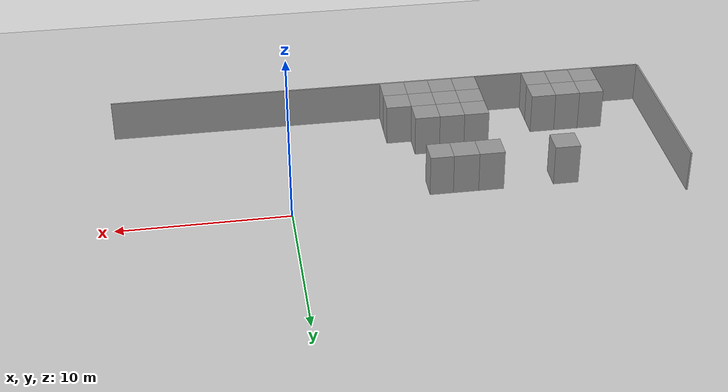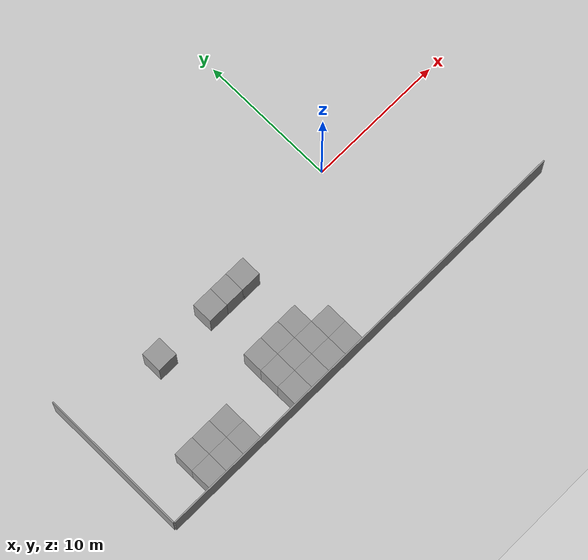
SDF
<sdf version="1.6">
 <world name="default">
  <model name="ground_plane">
   <static>1</static>
   <link name="link">
    <collision name="collision">
     <geometry><plane><normal>0 0 1</normal><size>100 100</size></plane></geometry>
     <surface><friction><ode><mu>100</mu><mu2>50</mu2></ode></friction></surface>
    </collision>
    <visual name="visual">
     <cast_shadows>0</cast_shadows>
     <geometry><plane><normal>0 0 1</normal><size>100 100</size></plane></geometry>
     <material>
      <script><uri>file://media/materials/scripts/gazebo.material</uri><name>Gazebo/Grey</name></script>
     </material>
    </visual>
   </link>
  </model>
  <model name="wall_1.5_1.5_44">
   <link name="Wall_2">
    <inertial>
     <mass>10</mass>
     <inertia><ixx>1</ixx><ixy>0</ixy><ixz>0</ixz><iyy>1</iyy><iyz>0</iyz><izz>1</izz></inertia>
    </inertial>
    <visual name="Wall_2_Visual">
     <pose>0 0 1.25 0 -0 0</pose>
     <geometry><box><size>1.5 1.5 2.5</size></box></geometry>
     <material>
      <script><uri>file://media/materials/scripts/gazebo.material</uri><name>Gazebo/Grey</name></script>
      <ambient>1 1 1 1</ambient>
      <diffuse>0.7 0.7 0.7 1</diffuse>
      <specular>0.01 0.01 0.01 1</specular>
      <emissive>0 0 0 1</emissive>
      <shader type="vertex"><normal_map>__default__</normal_map></shader>
     </material>
    </visual>
    <collision name="Wall_2_Collision">
     <pose>0 0 1.25 0 -0 0</pose>
     <geometry><box><size>1.5 1.5 2.5</size></box></geometry>
     <surface>
      <friction>
       <ode><mu>1</mu><mu2>1</mu2><fdir1>0 0 0</fdir1><slip1>0</slip1><slip2>0</slip2></ode>
       <torsional>
        <coefficient>1</coefficient>
        <patch_radius>0</patch_radius>
        <surface_radius>0</surface_radius>
        <use_patch_radius>1</use_patch_radius>
        <ode><slip>0</slip></ode>
       </torsional>
      </friction>
      <bounce><restitution_coefficient>0</restitution_coefficient><threshold>1e+06</threshold></bounce>
      <contact>
       <collide_without_contact>0</collide_without_contact>
       <collide_without_contact_bitmask>1</collide_without_contact_bitmask>
       <collide_bitmask>1</collide_bitmask>
       <ode>
        <soft_cfm>0</soft_cfm>
        <soft_erp>0.2</soft_erp>
        <kp>1e+13</kp>
        <kd>1</kd>
        <max_vel>0.01</max_vel>
        <min_depth>0</min_depth>
       </ode>
       <bullet>
        <split_impulse>1</split_impulse>
        <split_impulse_penetration_threshold>-0.01</split_impulse_penetration_threshold>
        <soft_cfm>0</soft_cfm>
        <soft_erp>0.2</soft_erp>
        <kp>1e+13</kp>
        <kd>1</kd>
       </bullet>
      </contact>
     </surface>
    </collision>
   </link>
   <static>1</static>
   <pose>-7.25 -9.25 0 0 -0 0</pose>
  </model>
  <model name="wall_1.5_1.5_45">
   <link name="Wall_2">
    <inertial>
     <mass>10</mass>
     <inertia><ixx>1</ixx><ixy>0</ixy><ixz>0</ixz><iyy>1</iyy><iyz>0</iyz><izz>1</izz></inertia>
    </inertial>
    <visual name="Wall_2_Visual">
     <pose>0 0 1.25 0 -0 0</pose>
     <geometry><box><size>1.5 1.5 2.5</size></box></geometry>
     <material>
      <script><uri>file://media/materials/scripts/gazebo.material</uri><name>Gazebo/Grey</name></script>
      <ambient>1 1 1 1</ambient>
      <diffuse>0.7 0.7 0.7 1</diffuse>
      <specular>0.01 0.01 0.01 1</specular>
      <emissive>0 0 0 1</emissive>
      <shader type="vertex"><normal_map>__default__</normal_map></shader>
     </material>
    </visual>
    <collision name="Wall_2_Collision">
     <pose>0 0 1.25 0 -0 0</pose>
     <geometry><box><size>1.5 1.5 2.5</size></box></geometry>
     <surface>
      <friction>
       <ode><mu>1</mu><mu2>1</mu2><fdir1>0 0 0</fdir1><slip1>0</slip1><slip2>0</slip2></ode>
       <torsional>
        <coefficient>1</coefficient>
        <patch_radius>0</patch_radius>
        <surface_radius>0</surface_radius>
        <use_patch_radius>1</use_patch_radius>
        <ode><slip>0</slip></ode>
       </torsional>
      </friction>
      <bounce><restitution_coefficient>0</restitution_coefficient><threshold>1e+06</threshold></bounce>
      <contact>
       <collide_without_contact>0</collide_without_contact>
       <collide_without_contact_bitmask>1</collide_without_contact_bitmask>
       <collide_bitmask>1</collide_bitmask>
       <ode>
        <soft_cfm>0</soft_cfm>
        <soft_erp>0.2</soft_erp>
        <kp>1e+13</kp>
        <kd>1</kd>
        <max_vel>0.01</max_vel>
        <min_depth>0</min_depth>
       </ode>
       <bullet>
        <split_impulse>1</split_impulse>
        <split_impulse_penetration_threshold>-0.01</split_impulse_penetration_threshold>
        <soft_cfm>0</soft_cfm>
        <soft_erp>0.2</soft_erp>
        <kp>1e+13</kp>
        <kd>1</kd>
       </bullet>
      </contact>
     </surface>
    </collision>
   </link>
   <static>1</static>
   <pose>-8.75 -9.25 0 0 -0 0</pose>
  </model>
  <model name="wall_1.5_1.5_46">
   <link name="Wall_2">
    <inertial>
     <mass>10</mass>
     <inertia><ixx>1</ixx><ixy>0</ixy><ixz>0</ixz><iyy>1</iyy><iyz>0</iyz><izz>1</izz></inertia>
    </inertial>
    <visual name="Wall_2_Visual">
     <pose>0 0 1.25 0 -0 0</pose>
     <geometry><box><size>1.5 1.5 2.5</size></box></geometry>
     <material>
      <script><uri>file://media/materials/scripts/gazebo.material</uri><name>Gazebo/Grey</name></script>
      <ambient>1 1 1 1</ambient>
      <diffuse>0.7 0.7 0.7 1</diffuse>
      <specular>0.01 0.01 0.01 1</specular>
      <emissive>0 0 0 1</emissive>
      <shader type="vertex"><normal_map>__default__</normal_map></shader>
     </material>
    </visual>
    <collision name="Wall_2_Collision">
     <pose>0 0 1.25 0 -0 0</pose>
     <geometry><box><size>1.5 1.5 2.5</size></box></geometry>
     <surface>
      <friction>
       <ode><mu>1</mu><mu2>1</mu2><fdir1>0 0 0</fdir1><slip1>0</slip1><slip2>0</slip2></ode>
       <torsional>
        <coefficient>1</coefficient>
        <patch_radius>0</patch_radius>
        <surface_radius>0</surface_radius>
        <use_patch_radius>1</use_patch_radius>
        <ode><slip>0</slip></ode>
       </torsional>
      </friction>
      <bounce><restitution_coefficient>0</restitution_coefficient><threshold>1e+06</threshold></bounce>
      <contact>
       <collide_without_contact>0</collide_without_contact>
       <collide_without_contact_bitmask>1</collide_without_contact_bitmask>
       <collide_bitmask>1</collide_bitmask>
       <ode>
        <soft_cfm>0</soft_cfm>
        <soft_erp>0.2</soft_erp>
        <kp>1e+13</kp>
        <kd>1</kd>
        <max_vel>0.01</max_vel>
        <min_depth>0</min_depth>
       </ode>
       <bullet>
        <split_impulse>1</split_impulse>
        <split_impulse_penetration_threshold>-0.01</split_impulse_penetration_threshold>
        <soft_cfm>0</soft_cfm>
        <soft_erp>0.2</soft_erp>
        <kp>1e+13</kp>
        <kd>1</kd>
       </bullet>
      </contact>
     </surface>
    </collision>
   </link>
   <static>1</static>
   <pose>-10.25 -9.25 0 0 -0 0</pose>
  </model>
  <model name="wall_1.5_1.5_47">
   <link name="Wall_2">
    <inertial>
     <mass>10</mass>
     <inertia><ixx>1</ixx><ixy>0</ixy><ixz>0</ixz><iyy>1</iyy><iyz>0</iyz><izz>1</izz></inertia>
    </inertial>
    <visual name="Wall_2_Visual">
     <pose>0 0 1.25 0 -0 0</pose>
     <geometry><box><size>1.5 1.5 2.5</size></box></geometry>
     <material>
      <script><uri>file://media/materials/scripts/gazebo.material</uri><name>Gazebo/Grey</name></script>
      <ambient>1 1 1 1</ambient>
      <diffuse>0.7 0.7 0.7 1</diffuse>
      <specular>0.01 0.01 0.01 1</specular>
      <emissive>0 0 0 1</emissive>
      <shader type="vertex"><normal_map>__default__</normal_map></shader>
     </material>
    </visual>
    <collision name="Wall_2_Collision">
     <pose>0 0 1.25 0 -0 0</pose>
     <geometry><box><size>1.5 1.5 2.5</size></box></geometry>
     <surface>
      <friction>
       <ode><mu>1</mu><mu2>1</mu2><fdir1>0 0 0</fdir1><slip1>0</slip1><slip2>0</slip2></ode>
       <torsional>
        <coefficient>1</coefficient>
        <patch_radius>0</patch_radius>
        <surface_radius>0</surface_radius>
        <use_patch_radius>1</use_patch_radius>
        <ode><slip>0</slip></ode>
       </torsional>
      </friction>
      <bounce><restitution_coefficient>0</restitution_coefficient><threshold>1e+06</threshold></bounce>
      <contact>
       <collide_without_contact>0</collide_without_contact>
       <collide_without_contact_bitmask>1</collide_without_contact_bitmask>
       <collide_bitmask>1</collide_bitmask>
       <ode>
        <soft_cfm>0</soft_cfm>
        <soft_erp>0.2</soft_erp>
        <kp>1e+13</kp>
        <kd>1</kd>
        <max_vel>0.01</max_vel>
        <min_depth>0</min_depth>
       </ode>
       <bullet>
        <split_impulse>1</split_impulse>
        <split_impulse_penetration_threshold>-0.01</split_impulse_penetration_threshold>
        <soft_cfm>0</soft_cfm>
        <soft_erp>0.2</soft_erp>
        <kp>1e+13</kp>
        <kd>1</kd>
       </bullet>
      </contact>
     </surface>
    </collision>
   </link>
   <static>1</static>
   <pose>-11.75 -9.25 0 0 -0 0</pose>
  </model>
  <model name="wall_1.5_1.5_51">
   <link name="Wall_2">
    <inertial>
     <mass>10</mass>
     <inertia><ixx>1</ixx><ixy>0</ixy><ixz>0</ixz><iyy>1</iyy><iyz>0</iyz><izz>1</izz></inertia>
    </inertial>
    <visual name="Wall_2_Visual">
     <pose>0 0 1.25 0 -0 0</pose>
     <geometry><box><size>1.5 1.5 2.5</size></box></geometry>
     <material>
      <script><uri>file://media/materials/scripts/gazebo.material</uri><name>Gazebo/Grey</name></script>
      <ambient>1 1 1 1</ambient>
      <diffuse>0.7 0.7 0.7 1</diffuse>
      <specular>0.01 0.01 0.01 1</specular>
      <emissive>0 0 0 1</emissive>
      <shader type="vertex"><normal_map>__default__</normal_map></shader>
     </material>
    </visual>
    <collision name="Wall_2_Collision">
     <pose>0 0 1.25 0 -0 0</pose>
     <geometry><box><size>1.5 1.5 2.5</size></box></geometry>
     <surface>
      <friction>
       <ode><mu>1</mu><mu2>1</mu2><fdir1>0 0 0</fdir1><slip1>0</slip1><slip2>0</slip2></ode>
       <torsional>
        <coefficient>1</coefficient>
        <patch_radius>0</patch_radius>
        <surface_radius>0</surface_radius>
        <use_patch_radius>1</use_patch_radius>
        <ode><slip>0</slip></ode>
       </torsional>
      </friction>
      <bounce><restitution_coefficient>0</restitution_coefficient><threshold>1e+06</threshold></bounce>
      <contact>
       <collide_without_contact>0</collide_without_contact>
       <collide_without_contact_bitmask>1</collide_without_contact_bitmask>
       <collide_bitmask>1</collide_bitmask>
       <ode>
        <soft_cfm>0</soft_cfm>
        <soft_erp>0.2</soft_erp>
        <kp>1e+13</kp>
        <kd>1</kd>
        <max_vel>0.01</max_vel>
        <min_depth>0</min_depth>
       </ode>
       <bullet>
        <split_impulse>1</split_impulse>
        <split_impulse_penetration_threshold>-0.01</split_impulse_penetration_threshold>
        <soft_cfm>0</soft_cfm>
        <soft_erp>0.2</soft_erp>
        <kp>1e+13</kp>
        <kd>1</kd>
       </bullet>
      </contact>
     </surface>
    </collision>
   </link>
   <static>1</static>
   <pose>-7.25 -7.75 0 0 -0 0</pose>
  </model>
  <model name="wall_1.5_1.5_52">
   <link name="Wall_2">
    <inertial>
     <mass>10</mass>
     <inertia><ixx>1</ixx><ixy>0</ixy><ixz>0</ixz><iyy>1</iyy><iyz>0</iyz><izz>1</izz></inertia>
    </inertial>
    <visual name="Wall_2_Visual">
     <pose>0 0 1.25 0 -0 0</pose>
     <geometry><box><size>1.5 1.5 2.5</size></box></geometry>
     <material>
      <script><uri>file://media/materials/scripts/gazebo.material</uri><name>Gazebo/Grey</name></script>
      <ambient>1 1 1 1</ambient>
      <diffuse>0.7 0.7 0.7 1</diffuse>
      <specular>0.01 0.01 0.01 1</specular>
      <emissive>0 0 0 1</emissive>
      <shader type="vertex"><normal_map>__default__</normal_map></shader>
     </material>
    </visual>
    <collision name="Wall_2_Collision">
     <pose>0 0 1.25 0 -0 0</pose>
     <geometry><box><size>1.5 1.5 2.5</size></box></geometry>
     <surface>
      <friction>
       <ode><mu>1</mu><mu2>1</mu2><fdir1>0 0 0</fdir1><slip1>0</slip1><slip2>0</slip2></ode>
       <torsional>
        <coefficient>1</coefficient>
        <patch_radius>0</patch_radius>
        <surface_radius>0</surface_radius>
        <use_patch_radius>1</use_patch_radius>
        <ode><slip>0</slip></ode>
       </torsional>
      </friction>
      <bounce><restitution_coefficient>0</restitution_coefficient><threshold>1e+06</threshold></bounce>
      <contact>
       <collide_without_contact>0</collide_without_contact>
       <collide_without_contact_bitmask>1</collide_without_contact_bitmask>
       <collide_bitmask>1</collide_bitmask>
       <ode>
        <soft_cfm>0</soft_cfm>
        <soft_erp>0.2</soft_erp>
        <kp>1e+13</kp>
        <kd>1</kd>
        <max_vel>0.01</max_vel>
        <min_depth>0</min_depth>
       </ode>
       <bullet>
        <split_impulse>1</split_impulse>
        <split_impulse_penetration_threshold>-0.01</split_impulse_penetration_threshold>
        <soft_cfm>0</soft_cfm>
        <soft_erp>0.2</soft_erp>
        <kp>1e+13</kp>
        <kd>1</kd>
       </bullet>
      </contact>
     </surface>
    </collision>
   </link>
   <static>1</static>
   <pose>-8.75 -7.75 0 0 -0 0</pose>
  </model>
  <model name="wall_1.5_1.5_53">
   <link name="Wall_2">
    <inertial>
     <mass>10</mass>
     <inertia><ixx>1</ixx><ixy>0</ixy><ixz>0</ixz><iyy>1</iyy><iyz>0</iyz><izz>1</izz></inertia>
    </inertial>
    <visual name="Wall_2_Visual">
     <pose>0 0 1.25 0 -0 0</pose>
     <geometry><box><size>1.5 1.5 2.5</size></box></geometry>
     <material>
      <script><uri>file://media/materials/scripts/gazebo.material</uri><name>Gazebo/Grey</name></script>
      <ambient>1 1 1 1</ambient>
      <diffuse>0.7 0.7 0.7 1</diffuse>
      <specular>0.01 0.01 0.01 1</specular>
      <emissive>0 0 0 1</emissive>
      <shader type="vertex"><normal_map>__default__</normal_map></shader>
     </material>
    </visual>
    <collision name="Wall_2_Collision">
     <pose>0 0 1.25 0 -0 0</pose>
     <geometry><box><size>1.5 1.5 2.5</size></box></geometry>
     <surface>
      <friction>
       <ode><mu>1</mu><mu2>1</mu2><fdir1>0 0 0</fdir1><slip1>0</slip1><slip2>0</slip2></ode>
       <torsional>
        <coefficient>1</coefficient>
        <patch_radius>0</patch_radius>
        <surface_radius>0</surface_radius>
        <use_patch_radius>1</use_patch_radius>
        <ode><slip>0</slip></ode>
       </torsional>
      </friction>
      <bounce><restitution_coefficient>0</restitution_coefficient><threshold>1e+06</threshold></bounce>
      <contact>
       <collide_without_contact>0</collide_without_contact>
       <collide_without_contact_bitmask>1</collide_without_contact_bitmask>
       <collide_bitmask>1</collide_bitmask>
       <ode>
        <soft_cfm>0</soft_cfm>
        <soft_erp>0.2</soft_erp>
        <kp>1e+13</kp>
        <kd>1</kd>
        <max_vel>0.01</max_vel>
        <min_depth>0</min_depth>
       </ode>
       <bullet>
        <split_impulse>1</split_impulse>
        <split_impulse_penetration_threshold>-0.01</split_impulse_penetration_threshold>
        <soft_cfm>0</soft_cfm>
        <soft_erp>0.2</soft_erp>
        <kp>1e+13</kp>
        <kd>1</kd>
       </bullet>
      </contact>
     </surface>
    </collision>
   </link>
   <static>1</static>
   <pose>-10.25 -7.75 0 0 -0 0</pose>
  </model>
  <model name="wall_1.5_1.5_54">
   <link name="Wall_2">
    <inertial>
     <mass>10</mass>
     <inertia><ixx>1</ixx><ixy>0</ixy><ixz>0</ixz><iyy>1</iyy><iyz>0</iyz><izz>1</izz></inertia>
    </inertial>
    <visual name="Wall_2_Visual">
     <pose>0 0 1.25 0 -0 0</pose>
     <geometry><box><size>1.5 1.5 2.5</size></box></geometry>
     <material>
      <script><uri>file://media/materials/scripts/gazebo.material</uri><name>Gazebo/Grey</name></script>
      <ambient>1 1 1 1</ambient>
      <diffuse>0.7 0.7 0.7 1</diffuse>
      <specular>0.01 0.01 0.01 1</specular>
      <emissive>0 0 0 1</emissive>
      <shader type="vertex"><normal_map>__default__</normal_map></shader>
     </material>
    </visual>
    <collision name="Wall_2_Collision">
     <pose>0 0 1.25 0 -0 0</pose>
     <geometry><box><size>1.5 1.5 2.5</size></box></geometry>
     <surface>
      <friction>
       <ode><mu>1</mu><mu2>1</mu2><fdir1>0 0 0</fdir1><slip1>0</slip1><slip2>0</slip2></ode>
       <torsional>
        <coefficient>1</coefficient>
        <patch_radius>0</patch_radius>
        <surface_radius>0</surface_radius>
        <use_patch_radius>1</use_patch_radius>
        <ode><slip>0</slip></ode>
       </torsional>
      </friction>
      <bounce><restitution_coefficient>0</restitution_coefficient><threshold>1e+06</threshold></bounce>
      <contact>
       <collide_without_contact>0</collide_without_contact>
       <collide_without_contact_bitmask>1</collide_without_contact_bitmask>
       <collide_bitmask>1</collide_bitmask>
       <ode>
        <soft_cfm>0</soft_cfm>
        <soft_erp>0.2</soft_erp>
        <kp>1e+13</kp>
        <kd>1</kd>
        <max_vel>0.01</max_vel>
        <min_depth>0</min_depth>
       </ode>
       <bullet>
        <split_impulse>1</split_impulse>
        <split_impulse_penetration_threshold>-0.01</split_impulse_penetration_threshold>
        <soft_cfm>0</soft_cfm>
        <soft_erp>0.2</soft_erp>
        <kp>1e+13</kp>
        <kd>1</kd>
       </bullet>
      </contact>
     </surface>
    </collision>
   </link>
   <static>1</static>
   <pose>-11.75 -7.75 0 0 -0 0</pose>
  </model>
  <model name="wall_1.5_1.5_61">
   <link name="Wall_2">
    <inertial>
     <mass>10</mass>
     <inertia><ixx>1</ixx><ixy>0</ixy><ixz>0</ixz><iyy>1</iyy><iyz>0</iyz><izz>1</izz></inertia>
    </inertial>
    <visual name="Wall_2_Visual">
     <pose>0 0 1.25 0 -0 0</pose>
     <geometry><box><size>1.5 1.5 2.5</size></box></geometry>
     <material>
      <script><uri>file://media/materials/scripts/gazebo.material</uri><name>Gazebo/Grey</name></script>
      <ambient>1 1 1 1</ambient>
      <diffuse>0.7 0.7 0.7 1</diffuse>
      <specular>0.01 0.01 0.01 1</specular>
      <emissive>0 0 0 1</emissive>
      <shader type="vertex"><normal_map>__default__</normal_map></shader>
     </material>
    </visual>
    <collision name="Wall_2_Collision">
     <pose>0 0 1.25 0 -0 0</pose>
     <geometry><box><size>1.5 1.5 2.5</size></box></geometry>
     <surface>
      <friction>
       <ode><mu>1</mu><mu2>1</mu2><fdir1>0 0 0</fdir1><slip1>0</slip1><slip2>0</slip2></ode>
       <torsional>
        <coefficient>1</coefficient>
        <patch_radius>0</patch_radius>
        <surface_radius>0</surface_radius>
        <use_patch_radius>1</use_patch_radius>
        <ode><slip>0</slip></ode>
       </torsional>
      </friction>
      <bounce><restitution_coefficient>0</restitution_coefficient><threshold>1e+06</threshold></bounce>
      <contact>
       <collide_without_contact>0</collide_without_contact>
       <collide_without_contact_bitmask>1</collide_without_contact_bitmask>
       <collide_bitmask>1</collide_bitmask>
       <ode>
        <soft_cfm>0</soft_cfm>
        <soft_erp>0.2</soft_erp>
        <kp>1e+13</kp>
        <kd>1</kd>
        <max_vel>0.01</max_vel>
        <min_depth>0</min_depth>
       </ode>
       <bullet>
        <split_impulse>1</split_impulse>
        <split_impulse_penetration_threshold>-0.01</split_impulse_penetration_threshold>
        <soft_cfm>0</soft_cfm>
        <soft_erp>0.2</soft_erp>
        <kp>1e+13</kp>
        <kd>1</kd>
       </bullet>
      </contact>
     </surface>
    </collision>
   </link>
   <static>1</static>
   <pose>-11.75 -6.25 0 0 -0 0</pose>
  </model>
  <model name="wall_1.5_1.5_62">
   <link name="Wall_2">
    <inertial>
     <mass>10</mass>
     <inertia><ixx>1</ixx><ixy>0</ixy><ixz>0</ixz><iyy>1</iyy><iyz>0</iyz><izz>1</izz></inertia>
    </inertial>
    <visual name="Wall_2_Visual">
     <pose>0 0 1.25 0 -0 0</pose>
     <geometry><box><size>1.5 1.5 2.5</size></box></geometry>
     <material>
      <script><uri>file://media/materials/scripts/gazebo.material</uri><name>Gazebo/Grey</name></script>
      <ambient>1 1 1 1</ambient>
      <diffuse>0.7 0.7 0.7 1</diffuse>
      <specular>0.01 0.01 0.01 1</specular>
      <emissive>0 0 0 1</emissive>
      <shader type="vertex"><normal_map>__default__</normal_map></shader>
     </material>
    </visual>
    <collision name="Wall_2_Collision">
     <pose>0 0 1.25 0 -0 0</pose>
     <geometry><box><size>1.5 1.5 2.5</size></box></geometry>
     <surface>
      <friction>
       <ode><mu>1</mu><mu2>1</mu2><fdir1>0 0 0</fdir1><slip1>0</slip1><slip2>0</slip2></ode>
       <torsional>
        <coefficient>1</coefficient>
        <patch_radius>0</patch_radius>
        <surface_radius>0</surface_radius>
        <use_patch_radius>1</use_patch_radius>
        <ode><slip>0</slip></ode>
       </torsional>
      </friction>
      <bounce><restitution_coefficient>0</restitution_coefficient><threshold>1e+06</threshold></bounce>
      <contact>
       <collide_without_contact>0</collide_without_contact>
       <collide_without_contact_bitmask>1</collide_without_contact_bitmask>
       <collide_bitmask>1</collide_bitmask>
       <ode>
        <soft_cfm>0</soft_cfm>
        <soft_erp>0.2</soft_erp>
        <kp>1e+13</kp>
        <kd>1</kd>
        <max_vel>0.01</max_vel>
        <min_depth>0</min_depth>
       </ode>
       <bullet>
        <split_impulse>1</split_impulse>
        <split_impulse_penetration_threshold>-0.01</split_impulse_penetration_threshold>
        <soft_cfm>0</soft_cfm>
        <soft_erp>0.2</soft_erp>
        <kp>1e+13</kp>
        <kd>1</kd>
       </bullet>
      </contact>
     </surface>
    </collision>
   </link>
   <static>1</static>
   <pose>-10.25 -6.25 0 0 -0 0</pose>
  </model>
  <model name="wall_1.5_1.5_63">
   <link name="Wall_2">
    <inertial>
     <mass>10</mass>
     <inertia><ixx>1</ixx><ixy>0</ixy><ixz>0</ixz><iyy>1</iyy><iyz>0</iyz><izz>1</izz></inertia>
    </inertial>
    <visual name="Wall_2_Visual">
     <pose>0 0 1.25 0 -0 0</pose>
     <geometry><box><size>1.5 1.5 2.5</size></box></geometry>
     <material>
      <script><uri>file://media/materials/scripts/gazebo.material</uri><name>Gazebo/Grey</name></script>
      <ambient>1 1 1 1</ambient>
      <diffuse>0.7 0.7 0.7 1</diffuse>
      <specular>0.01 0.01 0.01 1</specular>
      <emissive>0 0 0 1</emissive>
      <shader type="vertex"><normal_map>__default__</normal_map></shader>
     </material>
    </visual>
    <collision name="Wall_2_Collision">
     <pose>0 0 1.25 0 -0 0</pose>
     <geometry><box><size>1.5 1.5 2.5</size></box></geometry>
     <surface>
      <friction>
       <ode><mu>1</mu><mu2>1</mu2><fdir1>0 0 0</fdir1><slip1>0</slip1><slip2>0</slip2></ode>
       <torsional>
        <coefficient>1</coefficient>
        <patch_radius>0</patch_radius>
        <surface_radius>0</surface_radius>
        <use_patch_radius>1</use_patch_radius>
        <ode><slip>0</slip></ode>
       </torsional>
      </friction>
      <bounce><restitution_coefficient>0</restitution_coefficient><threshold>1e+06</threshold></bounce>
      <contact>
       <collide_without_contact>0</collide_without_contact>
       <collide_without_contact_bitmask>1</collide_without_contact_bitmask>
       <collide_bitmask>1</collide_bitmask>
       <ode>
        <soft_cfm>0</soft_cfm>
        <soft_erp>0.2</soft_erp>
        <kp>1e+13</kp>
        <kd>1</kd>
        <max_vel>0.01</max_vel>
        <min_depth>0</min_depth>
       </ode>
       <bullet>
        <split_impulse>1</split_impulse>
        <split_impulse_penetration_threshold>-0.01</split_impulse_penetration_threshold>
        <soft_cfm>0</soft_cfm>
        <soft_erp>0.2</soft_erp>
        <kp>1e+13</kp>
        <kd>1</kd>
       </bullet>
      </contact>
     </surface>
    </collision>
   </link>
   <static>1</static>
   <pose>-8.75 -6.25 0 0 -0 0</pose>
  </model>
  <model name="wall_1.5_1.5_95">
   <link name="Wall_2">
    <inertial>
     <mass>10</mass>
     <inertia><ixx>1</ixx><ixy>0</ixy><ixz>0</ixz><iyy>1</iyy><iyz>0</iyz><izz>1</izz></inertia>
    </inertial>
    <visual name="Wall_2_Visual">
     <pose>0 0 1.25 0 -0 0</pose>
     <geometry><box><size>1.5 1.5 2.5</size></box></geometry>
     <material>
      <script><uri>file://media/materials/scripts/gazebo.material</uri><name>Gazebo/Grey</name></script>
      <ambient>1 1 1 1</ambient>
      <diffuse>0.7 0.7 0.7 1</diffuse>
      <specular>0.01 0.01 0.01 1</specular>
      <emissive>0 0 0 1</emissive>
      <shader type="vertex"><normal_map>__default__</normal_map></shader>
     </material>
    </visual>
    <collision name="Wall_2_Collision">
     <pose>0 0 1.25 0 -0 0</pose>
     <geometry><box><size>1.5 1.5 2.5</size></box></geometry>
     <surface>
      <friction>
       <ode><mu>1</mu><mu2>1</mu2><fdir1>0 0 0</fdir1><slip1>0</slip1><slip2>0</slip2></ode>
       <torsional>
        <coefficient>1</coefficient>
        <patch_radius>0</patch_radius>
        <surface_radius>0</surface_radius>
        <use_patch_radius>1</use_patch_radius>
        <ode><slip>0</slip></ode>
       </torsional>
      </friction>
      <bounce><restitution_coefficient>0</restitution_coefficient><threshold>1e+06</threshold></bounce>
      <contact>
       <collide_without_contact>0</collide_without_contact>
       <collide_without_contact_bitmask>1</collide_without_contact_bitmask>
       <collide_bitmask>1</collide_bitmask>
       <ode>
        <soft_cfm>0</soft_cfm>
        <soft_erp>0.2</soft_erp>
        <kp>1e+13</kp>
        <kd>1</kd>
        <max_vel>0.01</max_vel>
        <min_depth>0</min_depth>
       </ode>
       <bullet>
        <split_impulse>1</split_impulse>
        <split_impulse_penetration_threshold>-0.01</split_impulse_penetration_threshold>
        <soft_cfm>0</soft_cfm>
        <soft_erp>0.2</soft_erp>
        <kp>1e+13</kp>
        <kd>1</kd>
       </bullet>
      </contact>
     </surface>
    </collision>
   </link>
   <static>1</static>
   <pose>-8.875 -1.75 0 0 -0 0</pose>
  </model>
  <model name="wall_1.5_1.5_97">
   <link name="Wall_2">
    <inertial>
     <mass>10</mass>
     <inertia><ixx>1</ixx><ixy>0</ixy><ixz>0</ixz><iyy>1</iyy><iyz>0</iyz><izz>1</izz></inertia>
    </inertial>
    <visual name="Wall_2_Visual">
     <pose>0 0 1.25 0 -0 0</pose>
     <geometry><box><size>1.5 1.5 2.5</size></box></geometry>
     <material>
      <script><uri>file://media/materials/scripts/gazebo.material</uri><name>Gazebo/Grey</name></script>
      <ambient>1 1 1 1</ambient>
      <diffuse>0.7 0.7 0.7 1</diffuse>
      <specular>0.01 0.01 0.01 1</specular>
      <emissive>0 0 0 1</emissive>
      <shader type="vertex"><normal_map>__default__</normal_map></shader>
     </material>
    </visual>
    <collision name="Wall_2_Collision">
     <pose>0 0 1.25 0 -0 0</pose>
     <geometry><box><size>1.5 1.5 2.5</size></box></geometry>
     <surface>
      <friction>
       <ode><mu>1</mu><mu2>1</mu2><fdir1>0 0 0</fdir1><slip1>0</slip1><slip2>0</slip2></ode>
       <torsional>
        <coefficient>1</coefficient>
        <patch_radius>0</patch_radius>
        <surface_radius>0</surface_radius>
        <use_patch_radius>1</use_patch_radius>
        <ode><slip>0</slip></ode>
       </torsional>
      </friction>
      <bounce><restitution_coefficient>0</restitution_coefficient><threshold>1e+06</threshold></bounce>
      <contact>
       <collide_without_contact>0</collide_without_contact>
       <collide_without_contact_bitmask>1</collide_without_contact_bitmask>
       <collide_bitmask>1</collide_bitmask>
       <ode>
        <soft_cfm>0</soft_cfm>
        <soft_erp>0.2</soft_erp>
        <kp>1e+13</kp>
        <kd>1</kd>
        <max_vel>0.01</max_vel>
        <min_depth>0</min_depth>
       </ode>
       <bullet>
        <split_impulse>1</split_impulse>
        <split_impulse_penetration_threshold>-0.01</split_impulse_penetration_threshold>
        <soft_cfm>0</soft_cfm>
        <soft_erp>0.2</soft_erp>
        <kp>1e+13</kp>
        <kd>1</kd>
       </bullet>
      </contact>
     </surface>
    </collision>
   </link>
   <static>1</static>
   <pose>-10.25 -1.75 0 0 -0 0</pose>
  </model>
  <model name="wall_1.5_1.5_98">
   <link name="Wall_2">
    <inertial>
     <mass>10</mass>
     <inertia><ixx>1</ixx><ixy>0</ixy><ixz>0</ixz><iyy>1</iyy><iyz>0</iyz><izz>1</izz></inertia>
    </inertial>
    <visual name="Wall_2_Visual">
     <pose>0 0 1.25 0 -0 0</pose>
     <geometry><box><size>1.5 1.5 2.5</size></box></geometry>
     <material>
      <script><uri>file://media/materials/scripts/gazebo.material</uri><name>Gazebo/Grey</name></script>
      <ambient>1 1 1 1</ambient>
      <diffuse>0.7 0.7 0.7 1</diffuse>
      <specular>0.01 0.01 0.01 1</specular>
      <emissive>0 0 0 1</emissive>
      <shader type="vertex"><normal_map>__default__</normal_map></shader>
     </material>
    </visual>
    <collision name="Wall_2_Collision">
     <pose>0 0 1.25 0 -0 0</pose>
     <geometry><box><size>1.5 1.5 2.5</size></box></geometry>
     <surface>
      <friction>
       <ode><mu>1</mu><mu2>1</mu2><fdir1>0 0 0</fdir1><slip1>0</slip1><slip2>0</slip2></ode>
       <torsional>
        <coefficient>1</coefficient>
        <patch_radius>0</patch_radius>
        <surface_radius>0</surface_radius>
        <use_patch_radius>1</use_patch_radius>
        <ode><slip>0</slip></ode>
       </torsional>
      </friction>
      <bounce><restitution_coefficient>0</restitution_coefficient><threshold>1e+06</threshold></bounce>
      <contact>
       <collide_without_contact>0</collide_without_contact>
       <collide_without_contact_bitmask>1</collide_without_contact_bitmask>
       <collide_bitmask>1</collide_bitmask>
       <ode>
        <soft_cfm>0</soft_cfm>
        <soft_erp>0.2</soft_erp>
        <kp>1e+13</kp>
        <kd>1</kd>
        <max_vel>0.01</max_vel>
        <min_depth>0</min_depth>
       </ode>
       <bullet>
        <split_impulse>1</split_impulse>
        <split_impulse_penetration_threshold>-0.01</split_impulse_penetration_threshold>
        <soft_cfm>0</soft_cfm>
        <soft_erp>0.2</soft_erp>
        <kp>1e+13</kp>
        <kd>1</kd>
       </bullet>
      </contact>
     </surface>
    </collision>
   </link>
   <static>1</static>
   <pose>-11.75 -1.75 0 0 -0 0</pose>
  </model>
  <model name="wall_1.5_1.5_113">
   <link name="Wall_2">
    <inertial>
     <mass>10</mass>
     <inertia><ixx>1</ixx><ixy>0</ixy><ixz>0</ixz><iyy>1</iyy><iyz>0</iyz><izz>1</izz></inertia>
    </inertial>
    <visual name="Wall_2_Visual">
     <pose>0 0 1.25 0 -0 0</pose>
     <geometry><box><size>1.5 1.5 2.5</size></box></geometry>
     <material>
      <script><uri>file://media/materials/scripts/gazebo.material</uri><name>Gazebo/Grey</name></script>
      <ambient>1 1 1 1</ambient>
      <diffuse>0.7 0.7 0.7 1</diffuse>
      <specular>0.01 0.01 0.01 1</specular>
      <emissive>0 0 0 1</emissive>
      <shader type="vertex"><normal_map>__default__</normal_map></shader>
     </material>
    </visual>
    <collision name="Wall_2_Collision">
     <pose>0 0 1.25 0 -0 0</pose>
     <geometry><box><size>1.5 1.5 2.5</size></box></geometry>
     <surface>
      <friction>
       <ode><mu>1</mu><mu2>1</mu2><fdir1>0 0 0</fdir1><slip1>0</slip1><slip2>0</slip2></ode>
       <torsional>
        <coefficient>1</coefficient>
        <patch_radius>0</patch_radius>
        <surface_radius>0</surface_radius>
        <use_patch_radius>1</use_patch_radius>
        <ode><slip>0</slip></ode>
       </torsional>
      </friction>
      <bounce><restitution_coefficient>0</restitution_coefficient><threshold>1e+06</threshold></bounce>
      <contact>
       <collide_without_contact>0</collide_without_contact>
       <collide_without_contact_bitmask>1</collide_without_contact_bitmask>
       <collide_bitmask>1</collide_bitmask>
       <ode>
        <soft_cfm>0</soft_cfm>
        <soft_erp>0.2</soft_erp>
        <kp>1e+13</kp>
        <kd>1</kd>
        <max_vel>0.01</max_vel>
        <min_depth>0</min_depth>
       </ode>
       <bullet>
        <split_impulse>1</split_impulse>
        <split_impulse_penetration_threshold>-0.01</split_impulse_penetration_threshold>
        <soft_cfm>0</soft_cfm>
        <soft_erp>0.2</soft_erp>
        <kp>1e+13</kp>
        <kd>1</kd>
       </bullet>
      </contact>
     </surface>
    </collision>
   </link>
   <static>1</static>
   <pose>-16.25 -9.25 0 0 -0 0</pose>
  </model>
  <model name="wall_1.5_1.5_114">
   <link name="Wall_2">
    <inertial>
     <mass>10</mass>
     <inertia><ixx>1</ixx><ixy>0</ixy><ixz>0</ixz><iyy>1</iyy><iyz>0</iyz><izz>1</izz></inertia>
    </inertial>
    <visual name="Wall_2_Visual">
     <pose>0 0 1.25 0 -0 0</pose>
     <geometry><box><size>1.5 1.5 2.5</size></box></geometry>
     <material>
      <script><uri>file://media/materials/scripts/gazebo.material</uri><name>Gazebo/Grey</name></script>
      <ambient>1 1 1 1</ambient>
      <diffuse>0.7 0.7 0.7 1</diffuse>
      <specular>0.01 0.01 0.01 1</specular>
      <emissive>0 0 0 1</emissive>
      <shader type="vertex"><normal_map>__default__</normal_map></shader>
     </material>
    </visual>
    <collision name="Wall_2_Collision">
     <pose>0 0 1.25 0 -0 0</pose>
     <geometry><box><size>1.5 1.5 2.5</size></box></geometry>
     <surface>
      <friction>
       <ode><mu>1</mu><mu2>1</mu2><fdir1>0 0 0</fdir1><slip1>0</slip1><slip2>0</slip2></ode>
       <torsional>
        <coefficient>1</coefficient>
        <patch_radius>0</patch_radius>
        <surface_radius>0</surface_radius>
        <use_patch_radius>1</use_patch_radius>
        <ode><slip>0</slip></ode>
       </torsional>
      </friction>
      <bounce><restitution_coefficient>0</restitution_coefficient><threshold>1e+06</threshold></bounce>
      <contact>
       <collide_without_contact>0</collide_without_contact>
       <collide_without_contact_bitmask>1</collide_without_contact_bitmask>
       <collide_bitmask>1</collide_bitmask>
       <ode>
        <soft_cfm>0</soft_cfm>
        <soft_erp>0.2</soft_erp>
        <kp>1e+13</kp>
        <kd>1</kd>
        <max_vel>0.01</max_vel>
        <min_depth>0</min_depth>
       </ode>
       <bullet>
        <split_impulse>1</split_impulse>
        <split_impulse_penetration_threshold>-0.01</split_impulse_penetration_threshold>
        <soft_cfm>0</soft_cfm>
        <soft_erp>0.2</soft_erp>
        <kp>1e+13</kp>
        <kd>1</kd>
       </bullet>
      </contact>
     </surface>
    </collision>
   </link>
   <static>1</static>
   <pose>-16.25 -7.75 0 0 -0 0</pose>
  </model>
  <model name="wall_1.5_1.5_115">
   <link name="Wall_2">
    <inertial>
     <mass>10</mass>
     <inertia><ixx>1</ixx><ixy>0</ixy><ixz>0</ixz><iyy>1</iyy><iyz>0</iyz><izz>1</izz></inertia>
    </inertial>
    <visual name="Wall_2_Visual">
     <pose>0 0 1.25 0 -0 0</pose>
     <geometry><box><size>1.5 1.5 2.5</size></box></geometry>
     <material>
      <script><uri>file://media/materials/scripts/gazebo.material</uri><name>Gazebo/Grey</name></script>
      <ambient>1 1 1 1</ambient>
      <diffuse>0.7 0.7 0.7 1</diffuse>
      <specular>0.01 0.01 0.01 1</specular>
      <emissive>0 0 0 1</emissive>
      <shader type="vertex"><normal_map>__default__</normal_map></shader>
     </material>
    </visual>
    <collision name="Wall_2_Collision">
     <pose>0 0 1.25 0 -0 0</pose>
     <geometry><box><size>1.5 1.5 2.5</size></box></geometry>
     <surface>
      <friction>
       <ode><mu>1</mu><mu2>1</mu2><fdir1>0 0 0</fdir1><slip1>0</slip1><slip2>0</slip2></ode>
       <torsional>
        <coefficient>1</coefficient>
        <patch_radius>0</patch_radius>
        <surface_radius>0</surface_radius>
        <use_patch_radius>1</use_patch_radius>
        <ode><slip>0</slip></ode>
       </torsional>
      </friction>
      <bounce><restitution_coefficient>0</restitution_coefficient><threshold>1e+06</threshold></bounce>
      <contact>
       <collide_without_contact>0</collide_without_contact>
       <collide_without_contact_bitmask>1</collide_without_contact_bitmask>
       <collide_bitmask>1</collide_bitmask>
       <ode>
        <soft_cfm>0</soft_cfm>
        <soft_erp>0.2</soft_erp>
        <kp>1e+13</kp>
        <kd>1</kd>
        <max_vel>0.01</max_vel>
        <min_depth>0</min_depth>
       </ode>
       <bullet>
        <split_impulse>1</split_impulse>
        <split_impulse_penetration_threshold>-0.01</split_impulse_penetration_threshold>
        <soft_cfm>0</soft_cfm>
        <soft_erp>0.2</soft_erp>
        <kp>1e+13</kp>
        <kd>1</kd>
       </bullet>
      </contact>
     </surface>
    </collision>
   </link>
   <static>1</static>
   <pose>-17.75 -9.25 0 0 -0 0</pose>
  </model>
  <model name="wall_1.5_1.5_116">
   <link name="Wall_2">
    <inertial>
     <mass>10</mass>
     <inertia><ixx>1</ixx><ixy>0</ixy><ixz>0</ixz><iyy>1</iyy><iyz>0</iyz><izz>1</izz></inertia>
    </inertial>
    <visual name="Wall_2_Visual">
     <pose>0 0 1.25 0 -0 0</pose>
     <geometry><box><size>1.5 1.5 2.5</size></box></geometry>
     <material>
      <script><uri>file://media/materials/scripts/gazebo.material</uri><name>Gazebo/Grey</name></script>
      <ambient>1 1 1 1</ambient>
      <diffuse>0.7 0.7 0.7 1</diffuse>
      <specular>0.01 0.01 0.01 1</specular>
      <emissive>0 0 0 1</emissive>
      <shader type="vertex"><normal_map>__default__</normal_map></shader>
     </material>
    </visual>
    <collision name="Wall_2_Collision">
     <pose>0 0 1.25 0 -0 0</pose>
     <geometry><box><size>1.5 1.5 2.5</size></box></geometry>
     <surface>
      <friction>
       <ode><mu>1</mu><mu2>1</mu2><fdir1>0 0 0</fdir1><slip1>0</slip1><slip2>0</slip2></ode>
       <torsional>
        <coefficient>1</coefficient>
        <patch_radius>0</patch_radius>
        <surface_radius>0</surface_radius>
        <use_patch_radius>1</use_patch_radius>
        <ode><slip>0</slip></ode>
       </torsional>
      </friction>
      <bounce><restitution_coefficient>0</restitution_coefficient><threshold>1e+06</threshold></bounce>
      <contact>
       <collide_without_contact>0</collide_without_contact>
       <collide_without_contact_bitmask>1</collide_without_contact_bitmask>
       <collide_bitmask>1</collide_bitmask>
       <ode>
        <soft_cfm>0</soft_cfm>
        <soft_erp>0.2</soft_erp>
        <kp>1e+13</kp>
        <kd>1</kd>
        <max_vel>0.01</max_vel>
        <min_depth>0</min_depth>
       </ode>
       <bullet>
        <split_impulse>1</split_impulse>
        <split_impulse_penetration_threshold>-0.01</split_impulse_penetration_threshold>
        <soft_cfm>0</soft_cfm>
        <soft_erp>0.2</soft_erp>
        <kp>1e+13</kp>
        <kd>1</kd>
       </bullet>
      </contact>
     </surface>
    </collision>
   </link>
   <static>1</static>
   <pose>-17.75 -7.75 0 0 -0 0</pose>
  </model>
  <model name="wall_1.5_1.5_117">
   <link name="Wall_2">
    <inertial>
     <mass>10</mass>
     <inertia><ixx>1</ixx><ixy>0</ixy><ixz>0</ixz><iyy>1</iyy><iyz>0</iyz><izz>1</izz></inertia>
    </inertial>
    <visual name="Wall_2_Visual">
     <pose>0 0 1.25 0 -0 0</pose>
     <geometry><box><size>1.5 1.5 2.5</size></box></geometry>
     <material>
      <script><uri>file://media/materials/scripts/gazebo.material</uri><name>Gazebo/Grey</name></script>
      <ambient>1 1 1 1</ambient>
      <diffuse>0.7 0.7 0.7 1</diffuse>
      <specular>0.01 0.01 0.01 1</specular>
      <emissive>0 0 0 1</emissive>
      <shader type="vertex"><normal_map>__default__</normal_map></shader>
     </material>
    </visual>
    <collision name="Wall_2_Collision">
     <pose>0 0 1.25 0 -0 0</pose>
     <geometry><box><size>1.5 1.5 2.5</size></box></geometry>
     <surface>
      <friction>
       <ode><mu>1</mu><mu2>1</mu2><fdir1>0 0 0</fdir1><slip1>0</slip1><slip2>0</slip2></ode>
       <torsional>
        <coefficient>1</coefficient>
        <patch_radius>0</patch_radius>
        <surface_radius>0</surface_radius>
        <use_patch_radius>1</use_patch_radius>
        <ode><slip>0</slip></ode>
       </torsional>
      </friction>
      <bounce><restitution_coefficient>0</restitution_coefficient><threshold>1e+06</threshold></bounce>
      <contact>
       <collide_without_contact>0</collide_without_contact>
       <collide_without_contact_bitmask>1</collide_without_contact_bitmask>
       <collide_bitmask>1</collide_bitmask>
       <ode>
        <soft_cfm>0</soft_cfm>
        <soft_erp>0.2</soft_erp>
        <kp>1e+13</kp>
        <kd>1</kd>
        <max_vel>0.01</max_vel>
        <min_depth>0</min_depth>
       </ode>
       <bullet>
        <split_impulse>1</split_impulse>
        <split_impulse_penetration_threshold>-0.01</split_impulse_penetration_threshold>
        <soft_cfm>0</soft_cfm>
        <soft_erp>0.2</soft_erp>
        <kp>1e+13</kp>
        <kd>1</kd>
       </bullet>
      </contact>
     </surface>
    </collision>
   </link>
   <static>1</static>
   <pose>-19.25 -9.25 0 0 -0 0</pose>
  </model>
  <model name="wall_1.5_1.5_118">
   <link name="Wall_2">
    <inertial>
     <mass>10</mass>
     <inertia><ixx>1</ixx><ixy>0</ixy><ixz>0</ixz><iyy>1</iyy><iyz>0</iyz><izz>1</izz></inertia>
    </inertial>
    <visual name="Wall_2_Visual">
     <pose>0 0 1.25 0 -0 0</pose>
     <geometry><box><size>1.5 1.5 2.5</size></box></geometry>
     <material>
      <script><uri>file://media/materials/scripts/gazebo.material</uri><name>Gazebo/Grey</name></script>
      <ambient>1 1 1 1</ambient>
      <diffuse>0.7 0.7 0.7 1</diffuse>
      <specular>0.01 0.01 0.01 1</specular>
      <emissive>0 0 0 1</emissive>
      <shader type="vertex"><normal_map>__default__</normal_map></shader>
     </material>
    </visual>
    <collision name="Wall_2_Collision">
     <pose>0 0 1.25 0 -0 0</pose>
     <geometry><box><size>1.5 1.5 2.5</size></box></geometry>
     <surface>
      <friction>
       <ode><mu>1</mu><mu2>1</mu2><fdir1>0 0 0</fdir1><slip1>0</slip1><slip2>0</slip2></ode>
       <torsional>
        <coefficient>1</coefficient>
        <patch_radius>0</patch_radius>
        <surface_radius>0</surface_radius>
        <use_patch_radius>1</use_patch_radius>
        <ode><slip>0</slip></ode>
       </torsional>
      </friction>
      <bounce><restitution_coefficient>0</restitution_coefficient><threshold>1e+06</threshold></bounce>
      <contact>
       <collide_without_contact>0</collide_without_contact>
       <collide_without_contact_bitmask>1</collide_without_contact_bitmask>
       <collide_bitmask>1</collide_bitmask>
       <ode>
        <soft_cfm>0</soft_cfm>
        <soft_erp>0.2</soft_erp>
        <kp>1e+13</kp>
        <kd>1</kd>
        <max_vel>0.01</max_vel>
        <min_depth>0</min_depth>
       </ode>
       <bullet>
        <split_impulse>1</split_impulse>
        <split_impulse_penetration_threshold>-0.01</split_impulse_penetration_threshold>
        <soft_cfm>0</soft_cfm>
        <soft_erp>0.2</soft_erp>
        <kp>1e+13</kp>
        <kd>1</kd>
       </bullet>
      </contact>
     </surface>
    </collision>
   </link>
   <static>1</static>
   <pose>-19.25 -7.75 0 0 -0 0</pose>
  </model>
  <model name="wall_1.5_1.5_119">
   <link name="Wall_2">
    <inertial>
     <mass>10</mass>
     <inertia><ixx>1</ixx><ixy>0</ixy><ixz>0</ixz><iyy>1</iyy><iyz>0</iyz><izz>1</izz></inertia>
    </inertial>
    <visual name="Wall_2_Visual">
     <pose>0 0 1.25 0 -0 0</pose>
     <geometry><box><size>1.5 1.5 2.5</size></box></geometry>
     <material>
      <script><uri>file://media/materials/scripts/gazebo.material</uri><name>Gazebo/Grey</name></script>
      <ambient>1 1 1 1</ambient>
      <diffuse>0.7 0.7 0.7 1</diffuse>
      <specular>0.01 0.01 0.01 1</specular>
      <emissive>0 0 0 1</emissive>
      <shader type="vertex"><normal_map>__default__</normal_map></shader>
     </material>
    </visual>
    <collision name="Wall_2_Collision">
     <pose>0 0 1.25 0 -0 0</pose>
     <geometry><box><size>1.5 1.5 2.5</size></box></geometry>
     <surface>
      <friction>
       <ode><mu>1</mu><mu2>1</mu2><fdir1>0 0 0</fdir1><slip1>0</slip1><slip2>0</slip2></ode>
       <torsional>
        <coefficient>1</coefficient>
        <patch_radius>0</patch_radius>
        <surface_radius>0</surface_radius>
        <use_patch_radius>1</use_patch_radius>
        <ode><slip>0</slip></ode>
       </torsional>
      </friction>
      <bounce><restitution_coefficient>0</restitution_coefficient><threshold>1e+06</threshold></bounce>
      <contact>
       <collide_without_contact>0</collide_without_contact>
       <collide_without_contact_bitmask>1</collide_without_contact_bitmask>
       <collide_bitmask>1</collide_bitmask>
       <ode>
        <soft_cfm>0</soft_cfm>
        <soft_erp>0.2</soft_erp>
        <kp>1e+13</kp>
        <kd>1</kd>
        <max_vel>0.01</max_vel>
        <min_depth>0</min_depth>
       </ode>
       <bullet>
        <split_impulse>1</split_impulse>
        <split_impulse_penetration_threshold>-0.01</split_impulse_penetration_threshold>
        <soft_cfm>0</soft_cfm>
        <soft_erp>0.2</soft_erp>
        <kp>1e+13</kp>
        <kd>1</kd>
       </bullet>
      </contact>
     </surface>
    </collision>
   </link>
   <static>1</static>
   <pose>-16.231 -1.76487 0 0 -0 0</pose>
  </model>
  <model name="wall_33">
   <link name="Wall_13">
    <inertial>
     <mass>10</mass>
     <inertia><ixx>1</ixx><ixy>0</ixy><ixz>0</ixz><iyy>1</iyy><iyz>0</iyz><izz>1</izz></inertia>
    </inertial>
    <visual name="Wall_13_Visual">
     <pose>0 0 1.25 0 -0 0</pose>
     <geometry><box><size>33 0.1 2.5</size></box></geometry>
     <material>
      <script><uri>file://media/materials/scripts/gazebo.material</uri><name>Gazebo/Grey</name></script>
      <ambient>1 1 1 1</ambient>
      <diffuse>0.7 0.7 0.7 1</diffuse>
      <specular>0.01 0.01 0.01 1</specular>
      <emissive>0 0 0 1</emissive>
      <shader type="vertex"><normal_map>__default__</normal_map></shader>
     </material>
    </visual>
    <collision name="Wall_13_Collision">
     <pose>0 0 1.25 0 -0 0</pose>
     <geometry><box><size>33 0.1 2.5</size></box></geometry>
     <surface>
      <friction>
       <ode><mu>1</mu><mu2>1</mu2><fdir1>0 0 0</fdir1><slip1>0</slip1><slip2>0</slip2></ode>
       <torsional>
        <coefficient>1</coefficient>
        <patch_radius>0</patch_radius>
        <surface_radius>0</surface_radius>
        <use_patch_radius>1</use_patch_radius>
        <ode><slip>0</slip></ode>
       </torsional>
      </friction>
      <bounce><restitution_coefficient>0</restitution_coefficient><threshold>1e+06</threshold></bounce>
      <contact>
       <collide_without_contact>0</collide_without_contact>
       <collide_without_contact_bitmask>1</collide_without_contact_bitmask>
       <collide_bitmask>1</collide_bitmask>
       <ode>
        <soft_cfm>0</soft_cfm>
        <soft_erp>0.2</soft_erp>
        <kp>1e+13</kp>
        <kd>1</kd>
        <max_vel>0.01</max_vel>
        <min_depth>0</min_depth>
       </ode>
       <bullet>
        <split_impulse>1</split_impulse>
        <split_impulse_penetration_threshold>-0.01</split_impulse_penetration_threshold>
        <soft_cfm>0</soft_cfm>
        <soft_erp>0.2</soft_erp>
        <kp>1e+13</kp>
        <kd>1</kd>
       </bullet>
      </contact>
     </surface>
    </collision>
   </link>
   <static>1</static>
   <pose>-6.5 -10.05 0 0 -0 0</pose>
  </model>
  <model name="wall_10.75">
   <link name="Wall_15">
    <inertial>
     <mass>10</mass>
     <inertia><ixx>1</ixx><ixy>0</ixy><ixz>0</ixz><iyy>1</iyy><iyz>0</iyz><izz>1</izz></inertia>
    </inertial>
    <visual name="Wall_15_Visual">
     <pose>0 0 1.25 0 -0 0</pose>
     <geometry><box><size>10.75 0.1 2.5</size></box></geometry>
     <material>
      <script><uri>file://media/materials/scripts/gazebo.material</uri><name>Gazebo/Grey</name></script>
      <ambient>1 1 1 1</ambient>
      <diffuse>0.7 0.7 0.7 1</diffuse>
      <specular>0.01 0.01 0.01 1</specular>
      <emissive>0 0 0 1</emissive>
      <shader type="vertex"><normal_map>__default__</normal_map></shader>
     </material>
    </visual>
    <collision name="Wall_15_Collision">
     <pose>0 0 1.25 0 -0 0</pose>
     <geometry><box><size>10.75 0.1 2.5</size></box></geometry>
     <surface>
      <friction>
       <ode><mu>1</mu><mu2>1</mu2><fdir1>0 0 0</fdir1><slip1>0</slip1><slip2>0</slip2></ode>
       <torsional>
        <coefficient>1</coefficient>
        <patch_radius>0</patch_radius>
        <surface_radius>0</surface_radius>
        <use_patch_radius>1</use_patch_radius>
        <ode><slip>0</slip></ode>
       </torsional>
      </friction>
      <bounce><restitution_coefficient>0</restitution_coefficient><threshold>1e+06</threshold></bounce>
      <contact>
       <collide_without_contact>0</collide_without_contact>
       <collide_without_contact_bitmask>1</collide_without_contact_bitmask>
       <collide_bitmask>1</collide_bitmask>
       <ode>
        <soft_cfm>0</soft_cfm>
        <soft_erp>0.2</soft_erp>
        <kp>1e+13</kp>
        <kd>1</kd>
        <max_vel>0.01</max_vel>
        <min_depth>0</min_depth>
       </ode>
       <bullet>
        <split_impulse>1</split_impulse>
        <split_impulse_penetration_threshold>-0.01</split_impulse_penetration_threshold>
        <soft_cfm>0</soft_cfm>
        <soft_erp>0.2</soft_erp>
        <kp>1e+13</kp>
        <kd>1</kd>
       </bullet>
      </contact>
     </surface>
    </collision>
   </link>
   <static>1</static>
   <pose>-23.05 -4.625 0 0 -0 1.5707</pose>
  </model>
 </world>
</sdf>
